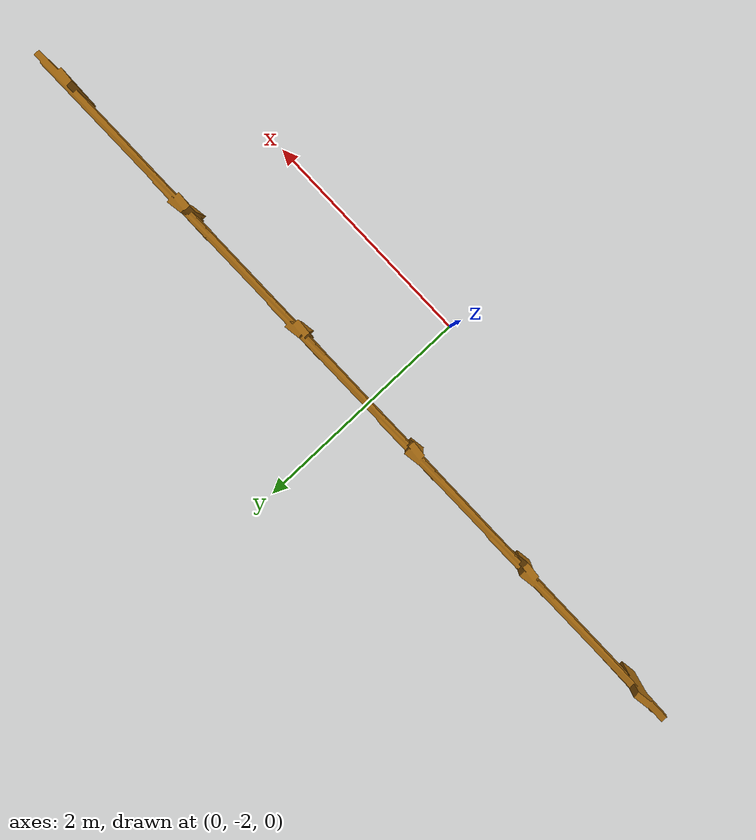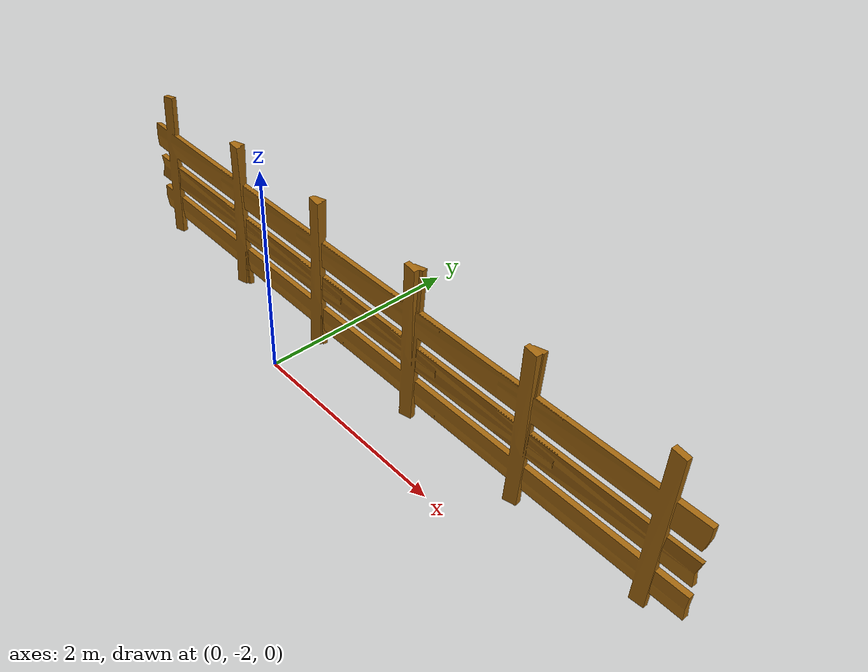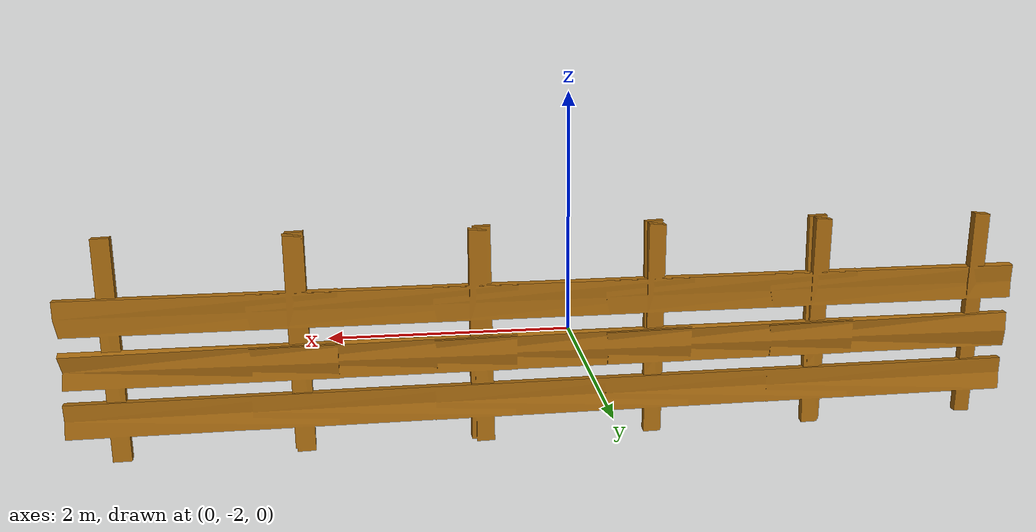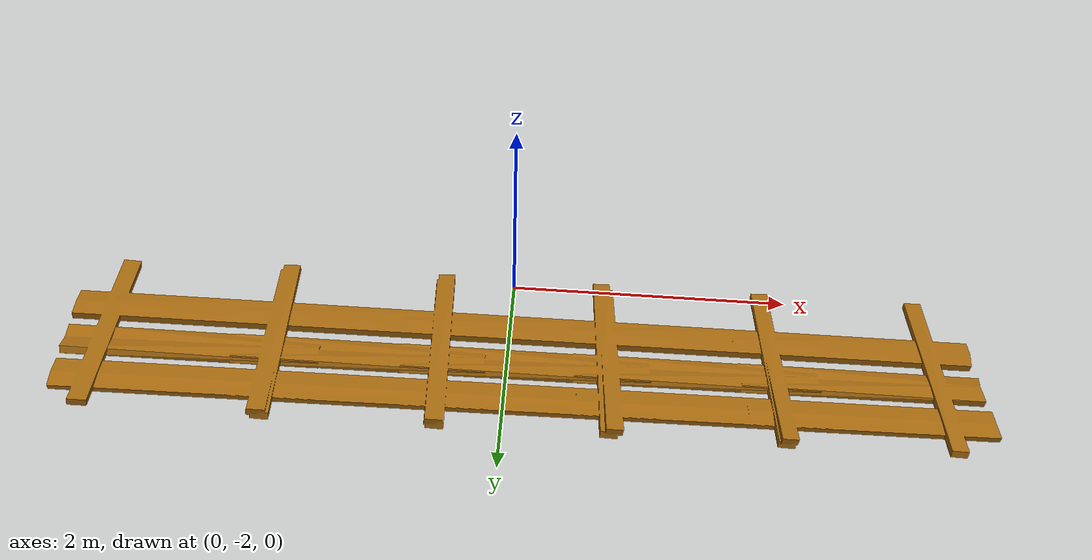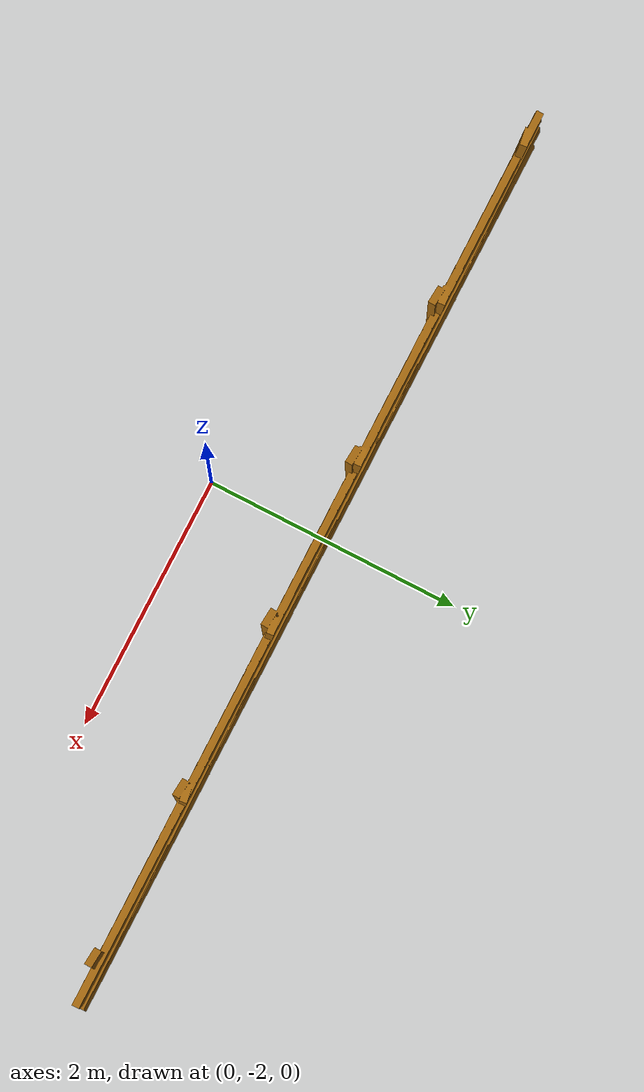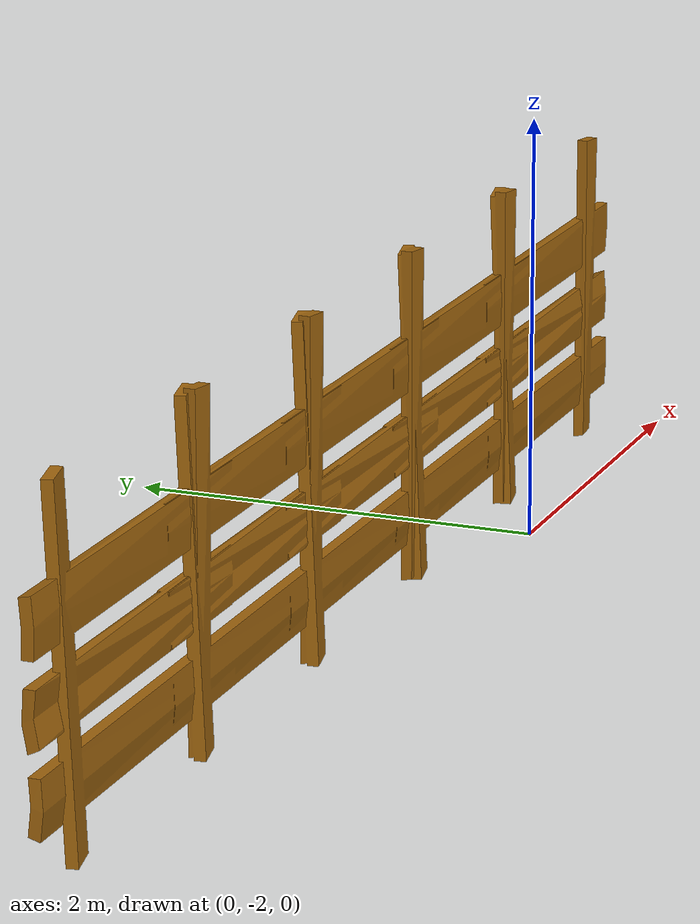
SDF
<?xml version="1.0" ?>
<sdf version="1.5">
  <model name="fence_big">
    <static>true</static>
    <link name="link">
      <pose>0 0 0 0 0 0</pose>
      <inertial>
        <mass>100.0</mass>
        <inertia>
          <ixx>192.33</ixx>
          <ixy>0</ixy>
          <ixz>0</ixz>
          <iyy>12.33</iyy>
          <iyz>0</iyz>
          <izz>204</izz>
        </inertia>
      </inertial>
      <collision name="collision">
        <pose>0 0 0. 0 0 0</pose>
        <geometry>
          <mesh>
            <uri>model://fence_big/meshes/fence_5_brown.dae</uri>
            <scale>1 1 1</scale>
          </mesh>
        </geometry>
      </collision>
      <visual name="visual">
        <pose>0 0 0 0 0 0</pose>
        <geometry>
          <mesh>
            <uri>model://fence_big/meshes/fence_5_brown.dae</uri>
            <scale>1 1 1</scale>
          </mesh>
        </geometry>
      </visual>
    </link>
  </model>
</sdf>
